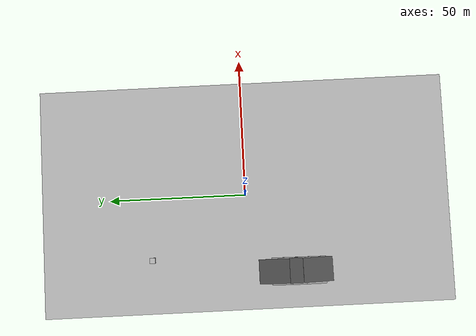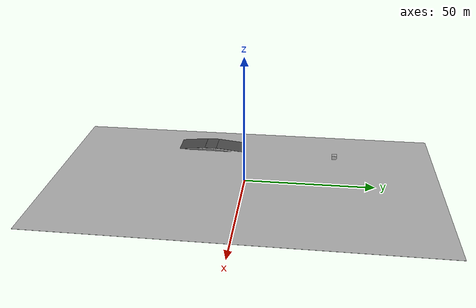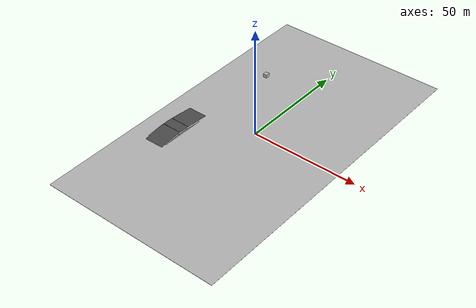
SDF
<sdf version="1.6">
 <world name="default">
  <include><uri>model://sun</uri></include>
  <model name="ground">
   <static>1</static>
   <link name="ground">
    <collision name="ground_coll"><geometry><box><size>83.6 150  0.05</size></box></geometry></collision>
    <visual name="ground_vis">
     <geometry><box><size>83.6 150  0.05</size></box></geometry>
     <material><script><uri>./course.material</uri><name>course</name></script></material>
    </visual>
   </link>
  </model>
  <model name="my_box">
   <static>false</static>
   <pose>-22.34 35 0.6 0 0 0</pose>
   <link name="link">
    <collision name="collision"><geometry><box><size>2 2 2</size></box></geometry></collision>
    <visual name="visual"><geometry><box><size>2 2 2</size></box></geometry></visual>
   </link>
   <plugin name="object_controller" filename="libgazebo_ros_planar_move.so">
    <ros><namespace>box_move</namespace></ros>
   </plugin>
  </model>
  <model name="up_road">
   <pose>-28.48 -11.5 -4.75 0.0 -0.08 -1.58</pose>
   <static>1</static>
   <link name="link">
    <collision name="collision"><geometry><box><size>10 10 10</size></box></geometry></collision>
    <visual name="visual">
     <geometry><box><size>10 10 10</size></box></geometry>
     <material>
      <script><uri>file://media/materials/scripts/gazebo.material</uri><name>Gazebo/Gray</name></script>
     </material>
    </visual>
   </link>
  </model>
  <model name="flat_road">
   <pose>-28.551 -18.5 -4.37 0.0 0.0 1.56</pose>
   <static>1</static>
   <link name="link">
    <collision name="collision"><geometry><box><size>5 10 10</size></box></geometry></collision>
    <visual name="visual">
     <geometry><box><size>5 10 10</size></box></geometry>
     <material>
      <script><uri>file://media/materials/scripts/gazebo.material</uri><name>Gazebo/Gray</name></script>
     </material>
    </visual>
   </link>
  </model>
  <model name="down_road">
   <pose>-28.61 -25.4 -4.75 0 0.08 -1.58</pose>
   <static>1</static>
   <link name="link">
    <collision name="collision"><geometry><box><size>10 10 10</size></box></geometry></collision>
    <visual name="visual">
     <geometry><box><size>10 10 10</size></box></geometry>
     <material>
      <script><uri>file://media/materials/scripts/gazebo.material</uri><name>Gazebo/Gray</name></script>
     </material>
    </visual>
   </link>
  </model>
  <model name="road">
   <pose>-28.4 -8.5 0.47 0.0 0.10 1.57</pose>
   <static>1</static>
   <link name="road">
    <collision name="road_coll"><geometry><box><size>13 9.6 0.05</size></box></geometry></collision>
    <visual name="road_vis">
     <geometry><box><size>13 9 0.05</size></box></geometry>
     <material><script><uri>./road.material</uri><name>road</name></script></material>
    </visual>
   </link>
  </model>
  <model name="road2">
   <pose>-28.4 -17.4 1.1 0.0 0.0 1.57</pose>
   <static>1</static>
   <link name="road2">
    <collision name="road2_coll"><geometry><box><size>5.0 9.1 0.05</size></box></geometry></collision>
    <visual name="road2_vis">
     <geometry><box><size>5.0 9.2 0.05</size></box></geometry>
     <material><script><uri>./road1.material</uri><name>road1</name></script></material>
    </visual>
   </link>
  </model>
  <model name="road3">
   <pose>-28.4 -26.4 0.45 0.0 -0.1 1.583</pose>
   <static>1</static>
   <link name="road3">
    <collision name="road3_coll"><geometry><box><size>13 9 0.05</size></box></geometry></collision>
    <visual name="road3_vis">
     <geometry><box><size>13 9 0.05</size></box></geometry>
     <material><script><uri>./road1.material</uri><name>road1</name></script></material>
    </visual>
   </link>
  </model>
 </world>
</sdf>
